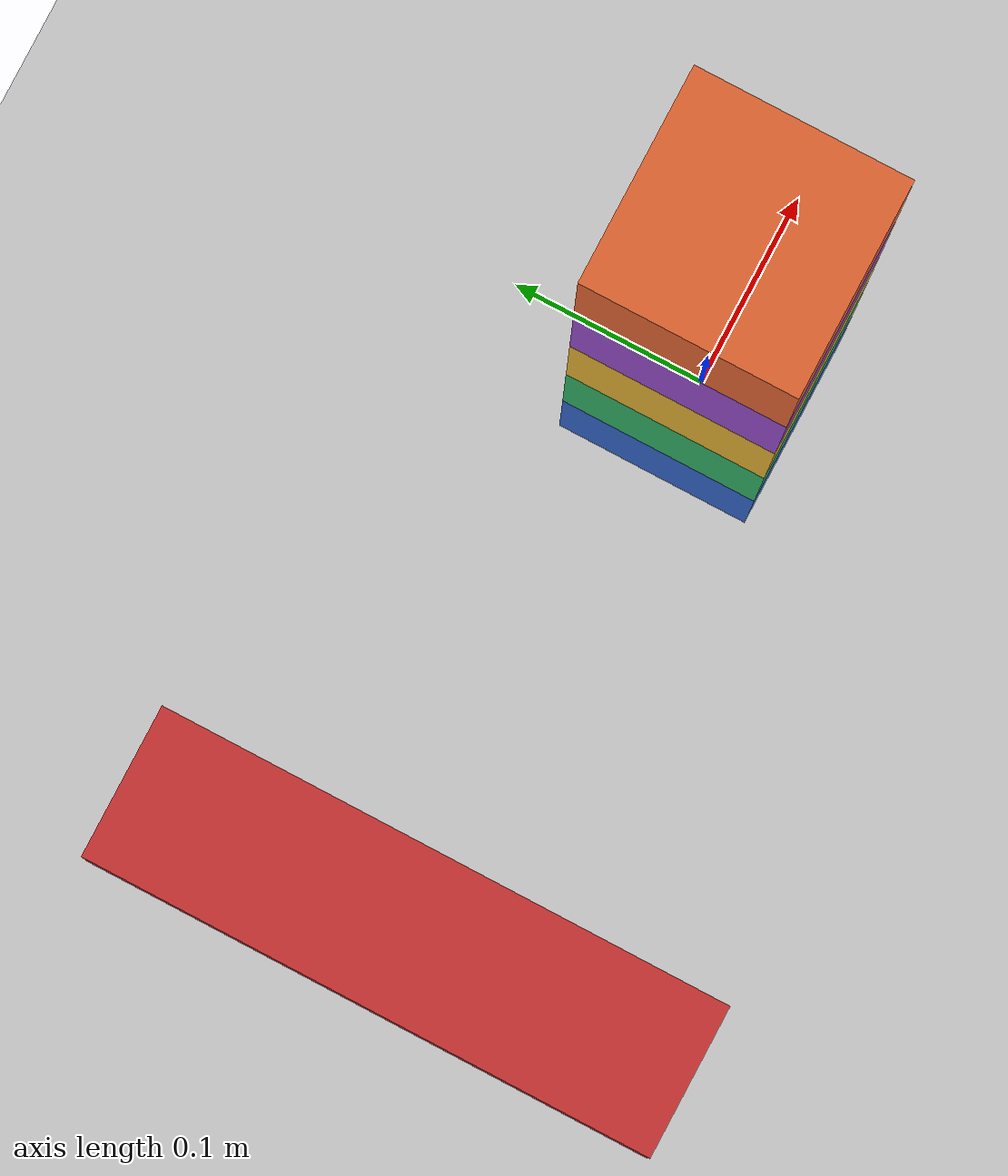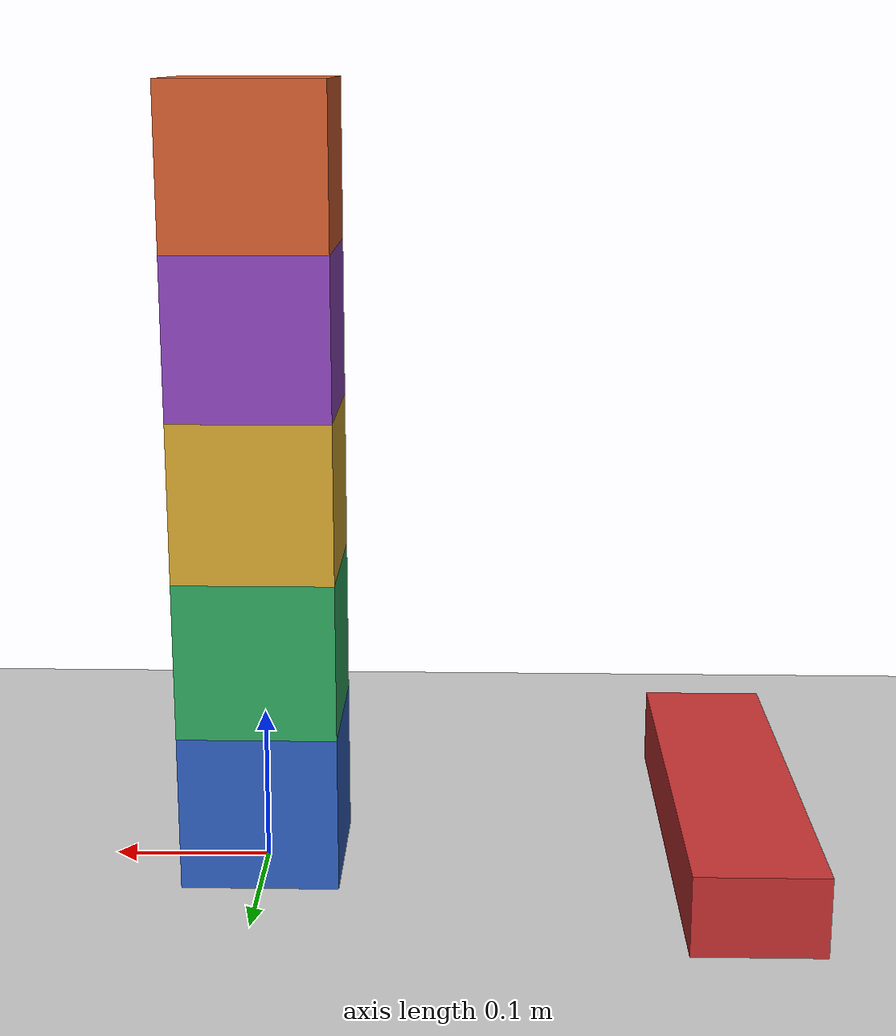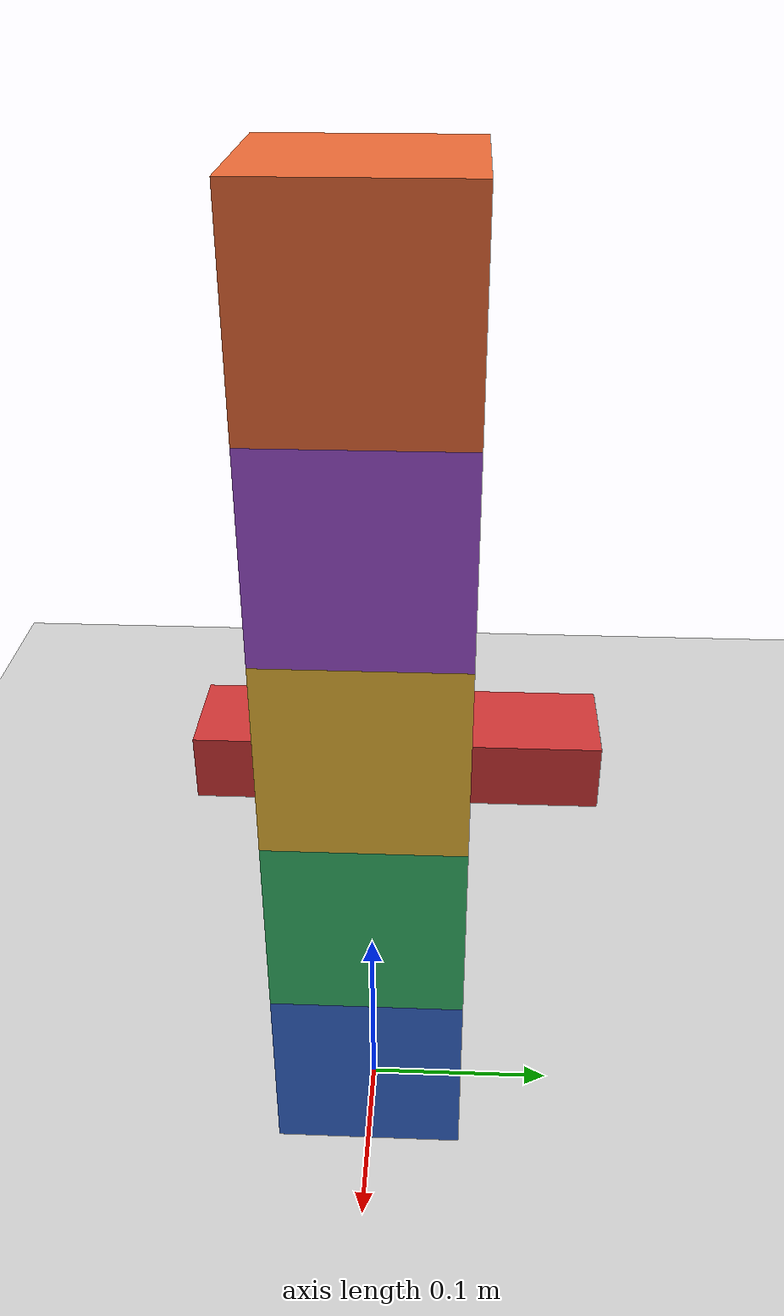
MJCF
<mujoco model="toppling_stack">
  <option timestep="0.002" gravity="0 0 -9.81"/>

  <worldbody>
    <light name="sun" pos="0 0 3" dir="0 0 -1" directional="true"/>
    <camera name="side" pos="0 -1.6 0.5" xyaxes="1 0 0 0 0.3 1"/>
    <geom name="floor" type="plane" size="3 3 0.1" rgba="0.8 0.8 0.8 1" friction="0.8 0.005 0.0001"/>

    <!-- Ram: slides along +x, low (z 0.01..0.06) so it only hits the bottom block -->
    <body name="ram" pos="-0.30 0 0.035">
      <joint name="ram_slide" type="slide" axis="1 0 0" limited="true" range="0 0.36" damping="1"/>
      <geom name="ram_geom" type="box" size="0.04 0.15 0.025" mass="5" rgba="0.8 0.2 0.2 1" friction="0.8 0.005 0.0001"/>
    </body>

    <body name="block1" pos="0 0 0.05">
      <freejoint name="block1_free"/>
      <geom name="block1_geom" type="box" size="0.05 0.05 0.05" density="500" rgba="0.2 0.4 0.8 1" friction="0.8 0.005 0.0001"/>
    </body>
    <body name="block2" pos="0 0 0.15">
      <freejoint name="block2_free"/>
      <geom name="block2_geom" type="box" size="0.05 0.05 0.05" density="500" rgba="0.2 0.7 0.4 1" friction="0.8 0.005 0.0001"/>
    </body>
    <body name="block3" pos="0 0 0.25">
      <freejoint name="block3_free"/>
      <geom name="block3_geom" type="box" size="0.05 0.05 0.05" density="500" rgba="0.9 0.7 0.2 1" friction="0.8 0.005 0.0001"/>
    </body>
    <body name="block4" pos="0 0 0.35">
      <freejoint name="block4_free"/>
      <geom name="block4_geom" type="box" size="0.05 0.05 0.05" density="500" rgba="0.6 0.3 0.8 1" friction="0.8 0.005 0.0001"/>
    </body>
    <body name="block5" pos="0 0 0.45">
      <freejoint name="block5_free"/>
      <geom name="block5_geom" type="box" size="0.05 0.05 0.05" density="500" rgba="0.9 0.4 0.2 1" friction="0.8 0.005 0.0001"/>
    </body>
  </worldbody>

  <contact>
    <exclude name="no_default_b1_b2" body1="block1" body2="block2"/>
    <pair name="slippery_b1_b2" geom1="block1_geom" geom2="block2_geom" condim="3" friction="0.03 0.03 0.005 0.0001 0.0001"/>
  </contact>

  <actuator>
    <velocity name="ram_motor" joint="ram_slide" kv="500" ctrllimited="true" ctrlrange="-1 1" forcelimited="true" forcerange="-300 300"/>
  </actuator>

  <keyframe>
    <key name="start" qpos="0  0 0 0.05 1 0 0 0  0 0 0.15 1 0 0 0  0 0 0.25 1 0 0 0  0 0 0.35 1 0 0 0  0 0 0.45 1 0 0 0" qvel="0.3  0 0 0 0 0 0  0 0 0 0 0 0  0 0 0 0 0 0  0 0 0 0 0 0  0 0 0 0 0 0" ctrl="0.3"/>
  </keyframe>
</mujoco>
